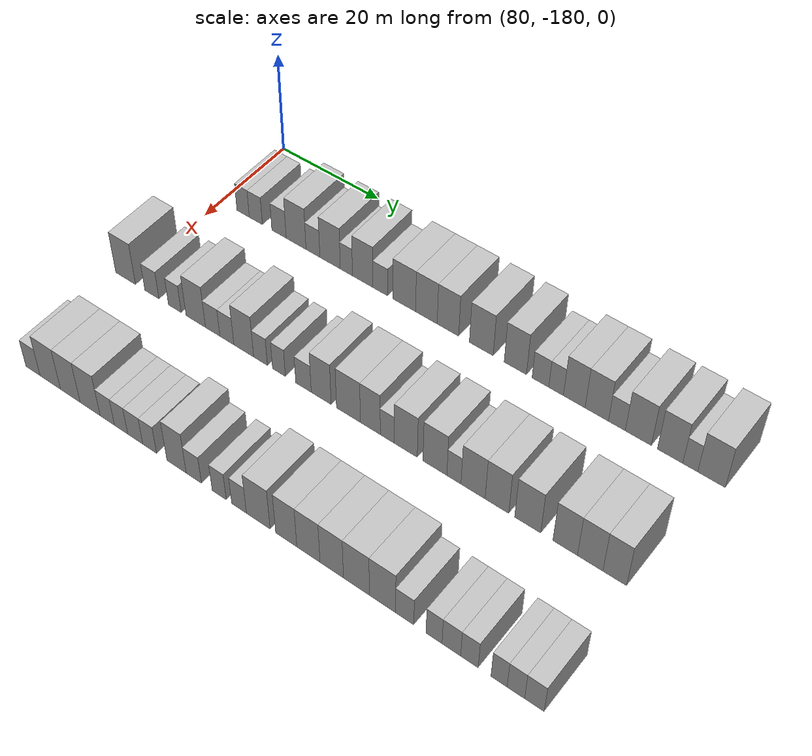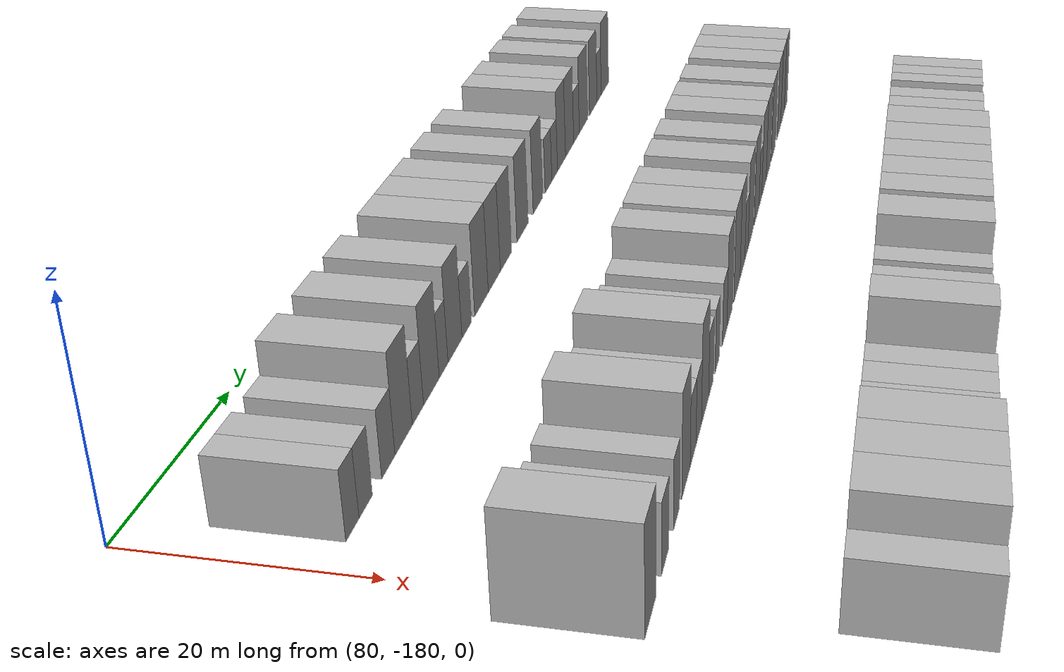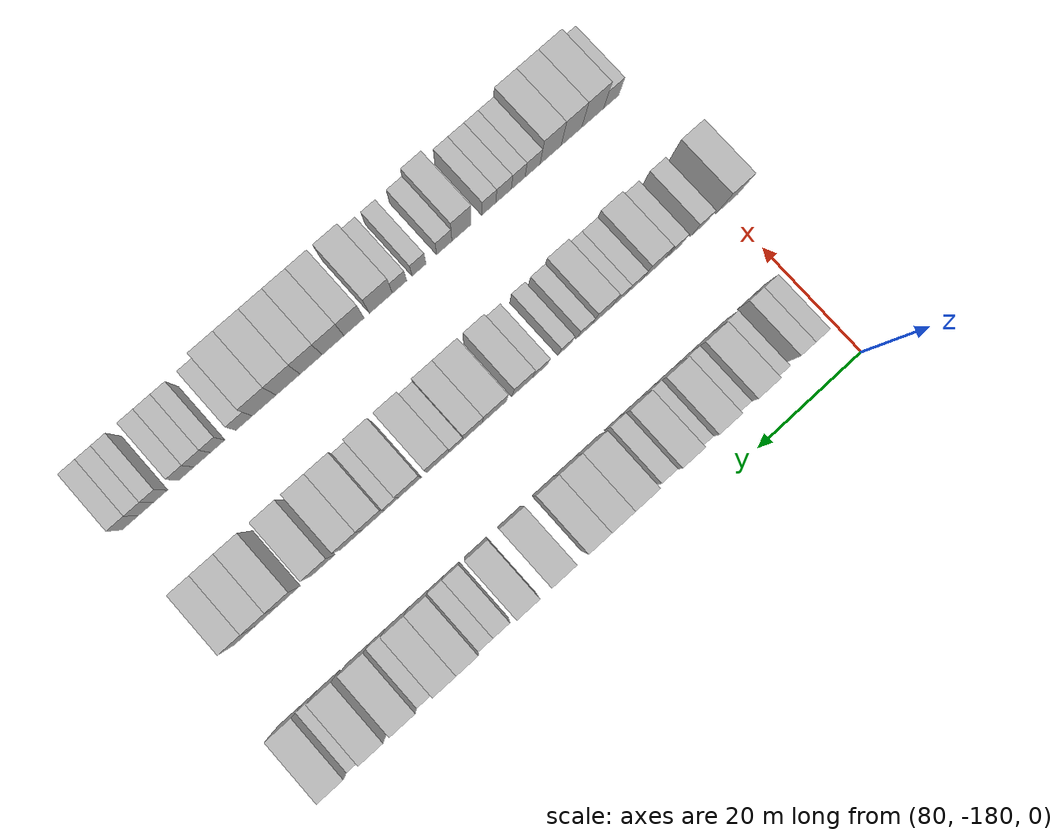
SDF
<sdf version="1.6">
 <world name="default">
  <model name="building_617">
   <static>1</static>
   <pose>91.0000 -175.3412 0 0.000000 0.000000 0.000000</pose>
   <link name="link">
    <pose>0 0 3.00 0 0 0</pose>
    <collision name="collision"><geometry><box><size>10.0000 2.6370 6.0000</size></box></geometry></collision>
    <visual name="visual">
     <cast_shadows>0</cast_shadows>
     <geometry><box><size>10.0000 2.6370 6.0000</size></box></geometry>
     <material>
      <script>
       <uri>model://HANNAS_wall/materials/scripts</uri>
       <uri>model://HANNAS_wall/materials/textures</uri>
       <name>vrc/HANNAS_wall</name>
      </script>
     </material>
    </visual>
   </link>
  </model>
  <model name="building_618">
   <static>1</static>
   <pose>91.0000 -172.6366 0 0.000000 0.000000 0.000000</pose>
   <link name="link">
    <pose>0 0 3.00 0 0 0</pose>
    <collision name="collision"><geometry><box><size>10.0000 2.7722 6.0000</size></box></geometry></collision>
    <visual name="visual">
     <cast_shadows>0</cast_shadows>
     <geometry><box><size>10.0000 2.7722 6.0000</size></box></geometry>
     <material>
      <script>
       <uri>model://HANNAS_wall/materials/scripts</uri>
       <uri>model://HANNAS_wall/materials/textures</uri>
       <name>vrc/HANNAS_wall</name>
      </script>
     </material>
    </visual>
   </link>
  </model>
  <model name="building_619">
   <static>1</static>
   <pose>91.0000 -167.7536 0 0.000000 0.000000 0.000000</pose>
   <link name="link">
    <pose>0 0 3.00 0 0 0</pose>
    <collision name="collision"><geometry><box><size>10.0000 2.9938 6.0000</size></box></geometry></collision>
    <visual name="visual">
     <cast_shadows>0</cast_shadows>
     <geometry><box><size>10.0000 2.9938 6.0000</size></box></geometry>
     <material>
      <script>
       <uri>model://HANNAS_wall/materials/scripts</uri>
       <uri>model://HANNAS_wall/materials/textures</uri>
       <name>vrc/HANNAS_wall</name>
      </script>
     </material>
    </visual>
   </link>
  </model>
  <model name="building_620">
   <static>1</static>
   <pose>91.0000 -164.2091 0 0.000000 0.000000 0.000000</pose>
   <link name="link">
    <pose>0 0 4.50 0 0 0</pose>
    <collision name="collision"><geometry><box><size>10.0000 4.0953 9.0000</size></box></geometry></collision>
    <visual name="visual">
     <cast_shadows>0</cast_shadows>
     <geometry><box><size>10.0000 4.0953 9.0000</size></box></geometry>
     <material>
      <script>
       <uri>model://HANNAS_wall/materials/scripts</uri>
       <uri>model://HANNAS_wall/materials/textures</uri>
       <name>vrc/HANNAS_wall</name>
      </script>
     </material>
    </visual>
   </link>
  </model>
  <model name="building_621">
   <static>1</static>
   <pose>91.0000 -160.7465 0 0.000000 0.000000 0.000000</pose>
   <link name="link">
    <pose>0 0 3.00 0 0 0</pose>
    <collision name="collision"><geometry><box><size>10.0000 2.8298 6.0000</size></box></geometry></collision>
    <visual name="visual">
     <cast_shadows>0</cast_shadows>
     <geometry><box><size>10.0000 2.8298 6.0000</size></box></geometry>
     <material>
      <script>
       <uri>model://HANNAS_wall/materials/scripts</uri>
       <uri>model://HANNAS_wall/materials/textures</uri>
       <name>vrc/HANNAS_wall</name>
      </script>
     </material>
    </visual>
   </link>
  </model>
  <model name="building_622">
   <static>1</static>
   <pose>91.0000 -157.2662 0 0.000000 0.000000 0.000000</pose>
   <link name="link">
    <pose>0 0 4.50 0 0 0</pose>
    <collision name="collision"><geometry><box><size>10.0000 4.1307 9.0000</size></box></geometry></collision>
    <visual name="visual">
     <cast_shadows>0</cast_shadows>
     <geometry><box><size>10.0000 4.1307 9.0000</size></box></geometry>
     <material>
      <script>
       <uri>model://HANNAS_wall/materials/scripts</uri>
       <uri>model://HANNAS_wall/materials/textures</uri>
       <name>vrc/HANNAS_wall</name>
      </script>
     </material>
    </visual>
   </link>
  </model>
  <model name="building_623">
   <static>1</static>
   <pose>91.0000 -153.9831 0 0.000000 0.000000 0.000000</pose>
   <link name="link">
    <pose>0 0 3.00 0 0 0</pose>
    <collision name="collision"><geometry><box><size>10.0000 2.4356 6.0000</size></box></geometry></collision>
    <visual name="visual">
     <cast_shadows>0</cast_shadows>
     <geometry><box><size>10.0000 2.4356 6.0000</size></box></geometry>
     <material>
      <script>
       <uri>model://HANNAS_wall/materials/scripts</uri>
       <uri>model://HANNAS_wall/materials/textures</uri>
       <name>vrc/HANNAS_wall</name>
      </script>
     </material>
    </visual>
   </link>
  </model>
  <model name="building_624">
   <static>1</static>
   <pose>91.0000 -150.7377 0 0.000000 0.000000 0.000000</pose>
   <link name="link">
    <pose>0 0 4.50 0 0 0</pose>
    <collision name="collision"><geometry><box><size>10.0000 4.0552 9.0000</size></box></geometry></collision>
    <visual name="visual">
     <cast_shadows>0</cast_shadows>
     <geometry><box><size>10.0000 4.0552 9.0000</size></box></geometry>
     <material>
      <script>
       <uri>model://HANNAS_wall/materials/scripts</uri>
       <uri>model://HANNAS_wall/materials/textures</uri>
       <name>vrc/HANNAS_wall</name>
      </script>
     </material>
    </visual>
   </link>
  </model>
  <model name="building_625">
   <static>1</static>
   <pose>91.0000 -147.2752 0 0.000000 0.000000 0.000000</pose>
   <link name="link">
    <pose>0 0 3.00 0 0 0</pose>
    <collision name="collision"><geometry><box><size>10.0000 2.8698 6.0000</size></box></geometry></collision>
    <visual name="visual">
     <cast_shadows>0</cast_shadows>
     <geometry><box><size>10.0000 2.8698 6.0000</size></box></geometry>
     <material>
      <script>
       <uri>model://HANNAS_wall/materials/scripts</uri>
       <uri>model://HANNAS_wall/materials/textures</uri>
       <name>vrc/HANNAS_wall</name>
      </script>
     </material>
    </visual>
   </link>
  </model>
  <model name="building_626">
   <static>1</static>
   <pose>91.0000 -142.6439 0 0.000000 0.000000 0.000000</pose>
   <link name="link">
    <pose>0 0 4.50 0 0 0</pose>
    <collision name="collision"><geometry><box><size>10.0000 4.3927 9.0000</size></box></geometry></collision>
    <visual name="visual">
     <cast_shadows>0</cast_shadows>
     <geometry><box><size>10.0000 4.3927 9.0000</size></box></geometry>
     <material>
      <script>
       <uri>model://HANNAS_wall/materials/scripts</uri>
       <uri>model://HANNAS_wall/materials/textures</uri>
       <name>vrc/HANNAS_wall</name>
      </script>
     </material>
    </visual>
   </link>
  </model>
  <model name="building_627">
   <static>1</static>
   <pose>91.0000 -138.3917 0 0.000000 0.000000 0.000000</pose>
   <link name="link">
    <pose>0 0 4.50 0 0 0</pose>
    <collision name="collision"><geometry><box><size>10.0000 4.1118 9.0000</size></box></geometry></collision>
    <visual name="visual">
     <cast_shadows>0</cast_shadows>
     <geometry><box><size>10.0000 4.1118 9.0000</size></box></geometry>
     <material>
      <script>
       <uri>model://HANNAS_wall/materials/scripts</uri>
       <uri>model://HANNAS_wall/materials/textures</uri>
       <name>vrc/HANNAS_wall</name>
      </script>
     </material>
    </visual>
   </link>
  </model>
  <model name="building_628">
   <static>1</static>
   <pose>91.0000 -134.3177 0 0.000000 0.000000 0.000000</pose>
   <link name="link">
    <pose>0 0 4.50 0 0 0</pose>
    <collision name="collision"><geometry><box><size>10.0000 4.0362 9.0000</size></box></geometry></collision>
    <visual name="visual">
     <cast_shadows>0</cast_shadows>
     <geometry><box><size>10.0000 4.0362 9.0000</size></box></geometry>
     <material>
      <script>
       <uri>model://HANNAS_wall/materials/scripts</uri>
       <uri>model://HANNAS_wall/materials/textures</uri>
       <name>vrc/HANNAS_wall</name>
      </script>
     </material>
    </visual>
   </link>
  </model>
  <model name="building_629">
   <static>1</static>
   <pose>91.0000 -128.1129 0 0.000000 0.000000 0.000000</pose>
   <link name="link">
    <pose>0 0 4.50 0 0 0</pose>
    <collision name="collision"><geometry><box><size>10.0000 4.3734 9.0000</size></box></geometry></collision>
    <visual name="visual">
     <cast_shadows>0</cast_shadows>
     <geometry><box><size>10.0000 4.3734 9.0000</size></box></geometry>
     <material>
      <script>
       <uri>model://HANNAS_wall/materials/scripts</uri>
       <uri>model://HANNAS_wall/materials/textures</uri>
       <name>vrc/HANNAS_wall</name>
      </script>
     </material>
    </visual>
   </link>
  </model>
  <model name="building_630">
   <static>1</static>
   <pose>91.0000 -121.9195 0 0.000000 0.000000 0.000000</pose>
   <link name="link">
    <pose>0 0 4.50 0 0 0</pose>
    <collision name="collision"><geometry><box><size>10.0000 4.0134 9.0000</size></box></geometry></collision>
    <visual name="visual">
     <cast_shadows>0</cast_shadows>
     <geometry><box><size>10.0000 4.0134 9.0000</size></box></geometry>
     <material>
      <script>
       <uri>model://HANNAS_wall/materials/scripts</uri>
       <uri>model://HANNAS_wall/materials/textures</uri>
       <name>vrc/HANNAS_wall</name>
      </script>
     </material>
    </visual>
   </link>
  </model>
  <model name="building_631">
   <static>1</static>
   <pose>91.0000 -117.4306 0 0.000000 0.000000 0.000000</pose>
   <link name="link">
    <pose>0 0 3.00 0 0 0</pose>
    <collision name="collision"><geometry><box><size>10.0000 2.9645 6.0000</size></box></geometry></collision>
    <visual name="visual">
     <cast_shadows>0</cast_shadows>
     <geometry><box><size>10.0000 2.9645 6.0000</size></box></geometry>
     <material>
      <script>
       <uri>model://HANNAS_wall/materials/scripts</uri>
       <uri>model://HANNAS_wall/materials/textures</uri>
       <name>vrc/HANNAS_wall</name>
      </script>
     </material>
    </visual>
   </link>
  </model>
  <model name="building_632">
   <static>1</static>
   <pose>91.0000 -114.6640 0 0.000000 0.000000 0.000000</pose>
   <link name="link">
    <pose>0 0 3.00 0 0 0</pose>
    <collision name="collision"><geometry><box><size>10.0000 2.5686 6.0000</size></box></geometry></collision>
    <visual name="visual">
     <cast_shadows>0</cast_shadows>
     <geometry><box><size>10.0000 2.5686 6.0000</size></box></geometry>
     <material>
      <script>
       <uri>model://HANNAS_wall/materials/scripts</uri>
       <uri>model://HANNAS_wall/materials/textures</uri>
       <name>vrc/HANNAS_wall</name>
      </script>
     </material>
    </visual>
   </link>
  </model>
  <model name="building_633">
   <static>1</static>
   <pose>91.0000 -111.4938 0 0.000000 0.000000 0.000000</pose>
   <link name="link">
    <pose>0 0 4.50 0 0 0</pose>
    <collision name="collision"><geometry><box><size>10.0000 3.7718 9.0000</size></box></geometry></collision>
    <visual name="visual">
     <cast_shadows>0</cast_shadows>
     <geometry><box><size>10.0000 3.7718 9.0000</size></box></geometry>
     <material>
      <script>
       <uri>model://HANNAS_wall/materials/scripts</uri>
       <uri>model://HANNAS_wall/materials/textures</uri>
       <name>vrc/HANNAS_wall</name>
      </script>
     </material>
    </visual>
   </link>
  </model>
  <model name="building_634">
   <static>1</static>
   <pose>91.0000 -107.6077 0 0.000000 0.000000 0.000000</pose>
   <link name="link">
    <pose>0 0 4.50 0 0 0</pose>
    <collision name="collision"><geometry><box><size>10.0000 4.0003 9.0000</size></box></geometry></collision>
    <visual name="visual">
     <cast_shadows>0</cast_shadows>
     <geometry><box><size>10.0000 4.0003 9.0000</size></box></geometry>
     <material>
      <script>
       <uri>model://HANNAS_wall/materials/scripts</uri>
       <uri>model://HANNAS_wall/materials/textures</uri>
       <name>vrc/HANNAS_wall</name>
      </script>
     </material>
    </visual>
   </link>
  </model>
  <model name="building_635">
   <static>1</static>
   <pose>91.0000 -104.1824 0 0.000000 0.000000 0.000000</pose>
   <link name="link">
    <pose>0 0 3.00 0 0 0</pose>
    <collision name="collision"><geometry><box><size>10.0000 2.8503 6.0000</size></box></geometry></collision>
    <visual name="visual">
     <cast_shadows>0</cast_shadows>
     <geometry><box><size>10.0000 2.8503 6.0000</size></box></geometry>
     <material>
      <script>
       <uri>model://HANNAS_wall/materials/scripts</uri>
       <uri>model://HANNAS_wall/materials/textures</uri>
       <name>vrc/HANNAS_wall</name>
      </script>
     </material>
    </visual>
   </link>
  </model>
  <model name="building_636">
   <static>1</static>
   <pose>91.0000 -100.5726 0 0.000000 0.000000 0.000000</pose>
   <link name="link">
    <pose>0 0 4.50 0 0 0</pose>
    <collision name="collision"><geometry><box><size>10.0000 4.3694 9.0000</size></box></geometry></collision>
    <visual name="visual">
     <cast_shadows>0</cast_shadows>
     <geometry><box><size>10.0000 4.3694 9.0000</size></box></geometry>
     <material>
      <script>
       <uri>model://HANNAS_wall/materials/scripts</uri>
       <uri>model://HANNAS_wall/materials/textures</uri>
       <name>vrc/HANNAS_wall</name>
      </script>
     </material>
    </visual>
   </link>
  </model>
  <model name="building_637">
   <static>1</static>
   <pose>91.0000 -95.3036 0 0.000000 0.000000 0.000000</pose>
   <link name="link">
    <pose>0 0 4.50 0 0 0</pose>
    <collision name="collision"><geometry><box><size>10.0000 4.1686 9.0000</size></box></geometry></collision>
    <visual name="visual">
     <cast_shadows>0</cast_shadows>
     <geometry><box><size>10.0000 4.1686 9.0000</size></box></geometry>
     <material>
      <script>
       <uri>model://HANNAS_wall/materials/scripts</uri>
       <uri>model://HANNAS_wall/materials/textures</uri>
       <name>vrc/HANNAS_wall</name>
      </script>
     </material>
    </visual>
   </link>
  </model>
  <model name="building_638">
   <static>1</static>
   <pose>91.0000 -92.0115 0 0.000000 0.000000 0.000000</pose>
   <link name="link">
    <pose>0 0 3.00 0 0 0</pose>
    <collision name="collision"><geometry><box><size>10.0000 2.4155 6.0000</size></box></geometry></collision>
    <visual name="visual">
     <cast_shadows>0</cast_shadows>
     <geometry><box><size>10.0000 2.4155 6.0000</size></box></geometry>
     <material>
      <script>
       <uri>model://HANNAS_wall/materials/scripts</uri>
       <uri>model://HANNAS_wall/materials/textures</uri>
       <name>vrc/HANNAS_wall</name>
      </script>
     </material>
    </visual>
   </link>
  </model>
  <model name="building_639">
   <static>1</static>
   <pose>91.0000 -88.5866 0 0.000000 0.000000 0.000000</pose>
   <link name="link">
    <pose>0 0 4.50 0 0 0</pose>
    <collision name="collision"><geometry><box><size>10.0000 4.4344 9.0000</size></box></geometry></collision>
    <visual name="visual">
     <cast_shadows>0</cast_shadows>
     <geometry><box><size>10.0000 4.4344 9.0000</size></box></geometry>
     <material>
      <script>
       <uri>model://HANNAS_wall/materials/scripts</uri>
       <uri>model://HANNAS_wall/materials/textures</uri>
       <name>vrc/HANNAS_wall</name>
      </script>
     </material>
    </visual>
   </link>
  </model>
  <model name="building_801">
   <static>1</static>
   <pose>113.0000 -180.5850 0 0.000000 0.000000 0.000000</pose>
   <link name="link">
    <pose>0 0 4.50 0 0 0</pose>
    <collision name="collision"><geometry><box><size>10.0000 4.2347 9.0000</size></box></geometry></collision>
    <visual name="visual">
     <cast_shadows>0</cast_shadows>
     <geometry><box><size>10.0000 4.2347 9.0000</size></box></geometry>
     <material>
      <script>
       <uri>model://HANNAS_wall/materials/scripts</uri>
       <uri>model://HANNAS_wall/materials/textures</uri>
       <name>vrc/HANNAS_wall</name>
      </script>
     </material>
    </visual>
   </link>
  </model>
  <model name="building_802">
   <static>1</static>
   <pose>113.0000 -174.9912 0 0.000000 0.000000 0.000000</pose>
   <link name="link">
    <pose>0 0 3.00 0 0 0</pose>
    <collision name="collision"><geometry><box><size>10.0000 2.9528 6.0000</size></box></geometry></collision>
    <visual name="visual">
     <cast_shadows>0</cast_shadows>
     <geometry><box><size>10.0000 2.9528 6.0000</size></box></geometry>
     <material>
      <script>
       <uri>model://HANNAS_wall/materials/scripts</uri>
       <uri>model://HANNAS_wall/materials/textures</uri>
       <name>vrc/HANNAS_wall</name>
      </script>
     </material>
    </visual>
   </link>
  </model>
  <model name="building_803">
   <static>1</static>
   <pose>113.0000 -170.1939 0 0.000000 0.000000 0.000000</pose>
   <link name="link">
    <pose>0 0 3.00 0 0 0</pose>
    <collision name="collision"><geometry><box><size>10.0000 2.6418 6.0000</size></box></geometry></collision>
    <visual name="visual">
     <cast_shadows>0</cast_shadows>
     <geometry><box><size>10.0000 2.6418 6.0000</size></box></geometry>
     <material>
      <script>
       <uri>model://HANNAS_wall/materials/scripts</uri>
       <uri>model://HANNAS_wall/materials/textures</uri>
       <name>vrc/HANNAS_wall</name>
      </script>
     </material>
    </visual>
   </link>
  </model>
  <model name="building_804">
   <static>1</static>
   <pose>113.0000 -165.8913 0 0.000000 0.000000 0.000000</pose>
   <link name="link">
    <pose>0 0 4.50 0 0 0</pose>
    <collision name="collision"><geometry><box><size>10.0000 3.9634 9.0000</size></box></geometry></collision>
    <visual name="visual">
     <cast_shadows>0</cast_shadows>
     <geometry><box><size>10.0000 3.9634 9.0000</size></box></geometry>
     <material>
      <script>
       <uri>model://HANNAS_wall/materials/scripts</uri>
       <uri>model://HANNAS_wall/materials/textures</uri>
       <name>vrc/HANNAS_wall</name>
      </script>
     </material>
    </visual>
   </link>
  </model>
  <model name="building_805">
   <static>1</static>
   <pose>113.0000 -162.4553 0 0.000000 0.000000 0.000000</pose>
   <link name="link">
    <pose>0 0 3.00 0 0 0</pose>
    <collision name="collision"><geometry><box><size>10.0000 2.9087 6.0000</size></box></geometry></collision>
    <visual name="visual">
     <cast_shadows>0</cast_shadows>
     <geometry><box><size>10.0000 2.9087 6.0000</size></box></geometry>
     <material>
      <script>
       <uri>model://HANNAS_wall/materials/scripts</uri>
       <uri>model://HANNAS_wall/materials/textures</uri>
       <name>vrc/HANNAS_wall</name>
      </script>
     </material>
    </visual>
   </link>
  </model>
  <model name="building_806">
   <static>1</static>
   <pose>113.0000 -159.5972 0 0.000000 0.000000 0.000000</pose>
   <link name="link">
    <pose>0 0 3.00 0 0 0</pose>
    <collision name="collision"><geometry><box><size>10.0000 2.8075 6.0000</size></box></geometry></collision>
    <visual name="visual">
     <cast_shadows>0</cast_shadows>
     <geometry><box><size>10.0000 2.8075 6.0000</size></box></geometry>
     <material>
      <script>
       <uri>model://HANNAS_wall/materials/scripts</uri>
       <uri>model://HANNAS_wall/materials/textures</uri>
       <name>vrc/HANNAS_wall</name>
      </script>
     </material>
    </visual>
   </link>
  </model>
  <model name="building_807">
   <static>1</static>
   <pose>113.0000 -156.2351 0 0.000000 0.000000 0.000000</pose>
   <link name="link">
    <pose>0 0 4.50 0 0 0</pose>
    <collision name="collision"><geometry><box><size>10.0000 3.9168 9.0000</size></box></geometry></collision>
    <visual name="visual">
     <cast_shadows>0</cast_shadows>
     <geometry><box><size>10.0000 3.9168 9.0000</size></box></geometry>
     <material>
      <script>
       <uri>model://HANNAS_wall/materials/scripts</uri>
       <uri>model://HANNAS_wall/materials/textures</uri>
       <name>vrc/HANNAS_wall</name>
      </script>
     </material>
    </visual>
   </link>
  </model>
  <model name="building_808">
   <static>1</static>
   <pose>113.0000 -152.9269 0 0.000000 0.000000 0.000000</pose>
   <link name="link">
    <pose>0 0 3.00 0 0 0</pose>
    <collision name="collision"><geometry><box><size>10.0000 2.6995 6.0000</size></box></geometry></collision>
    <visual name="visual">
     <cast_shadows>0</cast_shadows>
     <geometry><box><size>10.0000 2.6995 6.0000</size></box></geometry>
     <material>
      <script>
       <uri>model://HANNAS_wall/materials/scripts</uri>
       <uri>model://HANNAS_wall/materials/textures</uri>
       <name>vrc/HANNAS_wall</name>
      </script>
     </material>
    </visual>
   </link>
  </model>
  <model name="building_809">
   <static>1</static>
   <pose>113.0000 -149.3389 0 0.000000 0.000000 0.000000</pose>
   <link name="link">
    <pose>0 0 3.00 0 0 0</pose>
    <collision name="collision"><geometry><box><size>10.0000 2.4766 6.0000</size></box></geometry></collision>
    <visual name="visual">
     <cast_shadows>0</cast_shadows>
     <geometry><box><size>10.0000 2.4766 6.0000</size></box></geometry>
     <material>
      <script>
       <uri>model://HANNAS_wall/materials/scripts</uri>
       <uri>model://HANNAS_wall/materials/textures</uri>
       <name>vrc/HANNAS_wall</name>
      </script>
     </material>
    </visual>
   </link>
  </model>
  <model name="building_810">
   <static>1</static>
   <pose>113.0000 -144.6303 0 0.000000 0.000000 0.000000</pose>
   <link name="link">
    <pose>0 0 3.00 0 0 0</pose>
    <collision name="collision"><geometry><box><size>10.0000 2.9406 6.0000</size></box></geometry></collision>
    <visual name="visual">
     <cast_shadows>0</cast_shadows>
     <geometry><box><size>10.0000 2.9406 6.0000</size></box></geometry>
     <material>
      <script>
       <uri>model://HANNAS_wall/materials/scripts</uri>
       <uri>model://HANNAS_wall/materials/textures</uri>
       <name>vrc/HANNAS_wall</name>
      </script>
     </material>
    </visual>
   </link>
  </model>
  <model name="building_811">
   <static>1</static>
   <pose>113.0000 -141.2838 0 0.000000 0.000000 0.000000</pose>
   <link name="link">
    <pose>0 0 4.50 0 0 0</pose>
    <collision name="collision"><geometry><box><size>10.0000 3.7525 9.0000</size></box></geometry></collision>
    <visual name="visual">
     <cast_shadows>0</cast_shadows>
     <geometry><box><size>10.0000 3.7525 9.0000</size></box></geometry>
     <material>
      <script>
       <uri>model://HANNAS_wall/materials/scripts</uri>
       <uri>model://HANNAS_wall/materials/textures</uri>
       <name>vrc/HANNAS_wall</name>
      </script>
     </material>
    </visual>
   </link>
  </model>
  <model name="building_812">
   <static>1</static>
   <pose>113.0000 -136.1999 0 0.000000 0.000000 0.000000</pose>
   <link name="link">
    <pose>0 0 4.50 0 0 0</pose>
    <collision name="collision"><geometry><box><size>10.0000 4.4151 9.0000</size></box></geometry></collision>
    <visual name="visual">
     <cast_shadows>0</cast_shadows>
     <geometry><box><size>10.0000 4.4151 9.0000</size></box></geometry>
     <material>
      <script>
       <uri>model://HANNAS_wall/materials/scripts</uri>
       <uri>model://HANNAS_wall/materials/textures</uri>
       <name>vrc/HANNAS_wall</name>
      </script>
     </material>
    </visual>
   </link>
  </model>
  <model name="building_813">
   <static>1</static>
   <pose>113.0000 -132.1816 0 0.000000 0.000000 0.000000</pose>
   <link name="link">
    <pose>0 0 4.50 0 0 0</pose>
    <collision name="collision"><geometry><box><size>10.0000 3.6217 9.0000</size></box></geometry></collision>
    <visual name="visual">
     <cast_shadows>0</cast_shadows>
     <geometry><box><size>10.0000 3.6217 9.0000</size></box></geometry>
     <material>
      <script>
       <uri>model://HANNAS_wall/materials/scripts</uri>
       <uri>model://HANNAS_wall/materials/textures</uri>
       <name>vrc/HANNAS_wall</name>
      </script>
     </material>
    </visual>
   </link>
  </model>
  <model name="building_814">
   <static>1</static>
   <pose>113.0000 -129.1202 0 0.000000 0.000000 0.000000</pose>
   <link name="link">
    <pose>0 0 3.00 0 0 0</pose>
    <collision name="collision"><geometry><box><size>10.0000 2.5010 6.0000</size></box></geometry></collision>
    <visual name="visual">
     <cast_shadows>0</cast_shadows>
     <geometry><box><size>10.0000 2.5010 6.0000</size></box></geometry>
     <material>
      <script>
       <uri>model://HANNAS_wall/materials/scripts</uri>
       <uri>model://HANNAS_wall/materials/textures</uri>
       <name>vrc/HANNAS_wall</name>
      </script>
     </material>
    </visual>
   </link>
  </model>
  <model name="building_815">
   <static>1</static>
   <pose>113.0000 -125.8037 0 0.000000 0.000000 0.000000</pose>
   <link name="link">
    <pose>0 0 4.50 0 0 0</pose>
    <collision name="collision"><geometry><box><size>10.0000 4.1321 9.0000</size></box></geometry></collision>
    <visual name="visual">
     <cast_shadows>0</cast_shadows>
     <geometry><box><size>10.0000 4.1321 9.0000</size></box></geometry>
     <material>
      <script>
       <uri>model://HANNAS_wall/materials/scripts</uri>
       <uri>model://HANNAS_wall/materials/textures</uri>
       <name>vrc/HANNAS_wall</name>
      </script>
     </material>
    </visual>
   </link>
  </model>
  <model name="building_816">
   <static>1</static>
   <pose>113.0000 -120.6433 0 0.000000 0.000000 0.000000</pose>
   <link name="link">
    <pose>0 0 4.50 0 0 0</pose>
    <collision name="collision"><geometry><box><size>10.0000 4.1886 9.0000</size></box></geometry></collision>
    <visual name="visual">
     <cast_shadows>0</cast_shadows>
     <geometry><box><size>10.0000 4.1886 9.0000</size></box></geometry>
     <material>
      <script>
       <uri>model://HANNAS_wall/materials/scripts</uri>
       <uri>model://HANNAS_wall/materials/textures</uri>
       <name>vrc/HANNAS_wall</name>
      </script>
     </material>
    </visual>
   </link>
  </model>
  <model name="building_817">
   <static>1</static>
   <pose>113.0000 -117.3248 0 0.000000 0.000000 0.000000</pose>
   <link name="link">
    <pose>0 0 3.00 0 0 0</pose>
    <collision name="collision"><geometry><box><size>10.0000 2.4485 6.0000</size></box></geometry></collision>
    <visual name="visual">
     <cast_shadows>0</cast_shadows>
     <geometry><box><size>10.0000 2.4485 6.0000</size></box></geometry>
     <material>
      <script>
       <uri>model://HANNAS_wall/materials/scripts</uri>
       <uri>model://HANNAS_wall/materials/textures</uri>
       <name>vrc/HANNAS_wall</name>
      </script>
     </material>
    </visual>
   </link>
  </model>
  <model name="building_818">
   <static>1</static>
   <pose>113.0000 -114.0329 0 0.000000 0.000000 0.000000</pose>
   <link name="link">
    <pose>0 0 4.50 0 0 0</pose>
    <collision name="collision"><geometry><box><size>10.0000 4.1353 9.0000</size></box></geometry></collision>
    <visual name="visual">
     <cast_shadows>0</cast_shadows>
     <geometry><box><size>10.0000 4.1353 9.0000</size></box></geometry>
     <material>
      <script>
       <uri>model://HANNAS_wall/materials/scripts</uri>
       <uri>model://HANNAS_wall/materials/textures</uri>
       <name>vrc/HANNAS_wall</name>
      </script>
     </material>
    </visual>
   </link>
  </model>
  <model name="building_819">
   <static>1</static>
   <pose>113.0000 -109.9729 0 0.000000 0.000000 0.000000</pose>
   <link name="link">
    <pose>0 0 4.50 0 0 0</pose>
    <collision name="collision"><geometry><box><size>10.0000 3.9845 9.0000</size></box></geometry></collision>
    <visual name="visual">
     <cast_shadows>0</cast_shadows>
     <geometry><box><size>10.0000 3.9845 9.0000</size></box></geometry>
     <material>
      <script>
       <uri>model://HANNAS_wall/materials/scripts</uri>
       <uri>model://HANNAS_wall/materials/textures</uri>
       <name>vrc/HANNAS_wall</name>
      </script>
     </material>
    </visual>
   </link>
  </model>
  <model name="building_820">
   <static>1</static>
   <pose>113.0000 -104.8271 0 0.000000 0.000000 0.000000</pose>
   <link name="link">
    <pose>0 0 4.50 0 0 0</pose>
    <collision name="collision"><geometry><box><size>10.0000 4.3071 9.0000</size></box></geometry></collision>
    <visual name="visual">
     <cast_shadows>0</cast_shadows>
     <geometry><box><size>10.0000 4.3071 9.0000</size></box></geometry>
     <material>
      <script>
       <uri>model://HANNAS_wall/materials/scripts</uri>
       <uri>model://HANNAS_wall/materials/textures</uri>
       <name>vrc/HANNAS_wall</name>
      </script>
     </material>
    </visual>
   </link>
  </model>
  <model name="building_821">
   <static>1</static>
   <pose>113.0000 -98.6891 0 0.000000 0.000000 0.000000</pose>
   <link name="link">
    <pose>0 0 4.50 0 0 0</pose>
    <collision name="collision"><geometry><box><size>10.0000 3.9690 9.0000</size></box></geometry></collision>
    <visual name="visual">
     <cast_shadows>0</cast_shadows>
     <geometry><box><size>10.0000 3.9690 9.0000</size></box></geometry>
     <material>
      <script>
       <uri>model://HANNAS_wall/materials/scripts</uri>
       <uri>model://HANNAS_wall/materials/textures</uri>
       <name>vrc/HANNAS_wall</name>
      </script>
     </material>
    </visual>
   </link>
  </model>
  <model name="building_822">
   <static>1</static>
   <pose>113.0000 -94.6824 0 0.000000 0.000000 0.000000</pose>
   <link name="link">
    <pose>0 0 4.50 0 0 0</pose>
    <collision name="collision"><geometry><box><size>10.0000 4.0445 9.0000</size></box></geometry></collision>
    <visual name="visual">
     <cast_shadows>0</cast_shadows>
     <geometry><box><size>10.0000 4.0445 9.0000</size></box></geometry>
     <material>
      <script>
       <uri>model://HANNAS_wall/materials/scripts</uri>
       <uri>model://HANNAS_wall/materials/textures</uri>
       <name>vrc/HANNAS_wall</name>
      </script>
     </material>
    </visual>
   </link>
  </model>
  <model name="building_823">
   <static>1</static>
   <pose>113.0000 -90.7920 0 0.000000 0.000000 0.000000</pose>
   <link name="link">
    <pose>0 0 4.50 0 0 0</pose>
    <collision name="collision"><geometry><box><size>10.0000 3.7363 9.0000</size></box></geometry></collision>
    <visual name="visual">
     <cast_shadows>0</cast_shadows>
     <geometry><box><size>10.0000 3.7363 9.0000</size></box></geometry>
     <material>
      <script>
       <uri>model://HANNAS_wall/materials/scripts</uri>
       <uri>model://HANNAS_wall/materials/textures</uri>
       <name>vrc/HANNAS_wall</name>
      </script>
     </material>
    </visual>
   </link>
  </model>
  <model name="building_995">
   <static>1</static>
   <pose>135.0000 -178.5442 0 0.000000 0.000000 0.000000</pose>
   <link name="link">
    <pose>0 0 3.00 0 0 0</pose>
    <collision name="collision"><geometry><box><size>10.0000 2.9605 6.0000</size></box></geometry></collision>
    <visual name="visual">
     <cast_shadows>0</cast_shadows>
     <geometry><box><size>10.0000 2.9605 6.0000</size></box></geometry>
     <material>
      <script>
       <uri>model://HANNAS_wall/materials/scripts</uri>
       <uri>model://HANNAS_wall/materials/textures</uri>
       <name>vrc/HANNAS_wall</name>
      </script>
     </material>
    </visual>
   </link>
  </model>
  <model name="building_996">
   <static>1</static>
   <pose>135.0000 -174.9272 0 0.000000 0.000000 0.000000</pose>
   <link name="link">
    <pose>0 0 4.50 0 0 0</pose>
    <collision name="collision"><geometry><box><size>10.0000 4.2733 9.0000</size></box></geometry></collision>
    <visual name="visual">
     <cast_shadows>0</cast_shadows>
     <geometry><box><size>10.0000 4.2733 9.0000</size></box></geometry>
     <material>
      <script>
       <uri>model://HANNAS_wall/materials/scripts</uri>
       <uri>model://HANNAS_wall/materials/textures</uri>
       <name>vrc/HANNAS_wall</name>
      </script>
     </material>
    </visual>
   </link>
  </model>
  <model name="building_997">
   <static>1</static>
   <pose>135.0000 -170.7838 0 0.000000 0.000000 0.000000</pose>
   <link name="link">
    <pose>0 0 4.50 0 0 0</pose>
    <collision name="collision"><geometry><box><size>10.0000 4.0135 9.0000</size></box></geometry></collision>
    <visual name="visual">
     <cast_shadows>0</cast_shadows>
     <geometry><box><size>10.0000 4.0135 9.0000</size></box></geometry>
     <material>
      <script>
       <uri>model://HANNAS_wall/materials/scripts</uri>
       <uri>model://HANNAS_wall/materials/textures</uri>
       <name>vrc/HANNAS_wall</name>
      </script>
     </material>
    </visual>
   </link>
  </model>
  <model name="building_998">
   <static>1</static>
   <pose>135.0000 -166.7561 0 0.000000 0.000000 0.000000</pose>
   <link name="link">
    <pose>0 0 4.50 0 0 0</pose>
    <collision name="collision"><geometry><box><size>10.0000 4.0419 9.0000</size></box></geometry></collision>
    <visual name="visual">
     <cast_shadows>0</cast_shadows>
     <geometry><box><size>10.0000 4.0419 9.0000</size></box></geometry>
     <material>
      <script>
       <uri>model://HANNAS_wall/materials/scripts</uri>
       <uri>model://HANNAS_wall/materials/textures</uri>
       <name>vrc/HANNAS_wall</name>
      </script>
     </material>
    </visual>
   </link>
  </model>
  <model name="building_999">
   <static>1</static>
   <pose>135.0000 -163.2992 0 0.000000 0.000000 0.000000</pose>
   <link name="link">
    <pose>0 0 3.00 0 0 0</pose>
    <collision name="collision"><geometry><box><size>10.0000 2.8718 6.0000</size></box></geometry></collision>
    <visual name="visual">
     <cast_shadows>0</cast_shadows>
     <geometry><box><size>10.0000 2.8718 6.0000</size></box></geometry>
     <material>
      <script>
       <uri>model://HANNAS_wall/materials/scripts</uri>
       <uri>model://HANNAS_wall/materials/textures</uri>
       <name>vrc/HANNAS_wall</name>
      </script>
     </material>
    </visual>
   </link>
  </model>
  <model name="building_1000">
   <static>1</static>
   <pose>135.0000 -160.5485 0 0.000000 0.000000 0.000000</pose>
   <link name="link">
    <pose>0 0 3.00 0 0 0</pose>
    <collision name="collision"><geometry><box><size>10.0000 2.6296 6.0000</size></box></geometry></collision>
    <visual name="visual">
     <cast_shadows>0</cast_shadows>
     <geometry><box><size>10.0000 2.6296 6.0000</size></box></geometry>
     <material>
      <script>
       <uri>model://HANNAS_wall/materials/scripts</uri>
       <uri>model://HANNAS_wall/materials/textures</uri>
       <name>vrc/HANNAS_wall</name>
      </script>
     </material>
    </visual>
   </link>
  </model>
  <model name="building_1001">
   <static>1</static>
   <pose>135.0000 -157.7571 0 0.000000 0.000000 0.000000</pose>
   <link name="link">
    <pose>0 0 3.00 0 0 0</pose>
    <collision name="collision"><geometry><box><size>10.0000 2.9533 6.0000</size></box></geometry></collision>
    <visual name="visual">
     <cast_shadows>0</cast_shadows>
     <geometry><box><size>10.0000 2.9533 6.0000</size></box></geometry>
     <material>
      <script>
       <uri>model://HANNAS_wall/materials/scripts</uri>
       <uri>model://HANNAS_wall/materials/textures</uri>
       <name>vrc/HANNAS_wall</name>
      </script>
     </material>
    </visual>
   </link>
  </model>
  <model name="building_1002">
   <static>1</static>
   <pose>135.0000 -154.9464 0 0.000000 0.000000 0.000000</pose>
   <link name="link">
    <pose>0 0 3.00 0 0 0</pose>
    <collision name="collision"><geometry><box><size>10.0000 2.6680 6.0000</size></box></geometry></collision>
    <visual name="visual">
     <cast_shadows>0</cast_shadows>
     <geometry><box><size>10.0000 2.6680 6.0000</size></box></geometry>
     <material>
      <script>
       <uri>model://HANNAS_wall/materials/scripts</uri>
       <uri>model://HANNAS_wall/materials/textures</uri>
       <name>vrc/HANNAS_wall</name>
      </script>
     </material>
    </visual>
   </link>
  </model>
  <model name="building_1003">
   <static>1</static>
   <pose>135.0000 -149.7729 0 0.000000 0.000000 0.000000</pose>
   <link name="link">
    <pose>0 0 4.50 0 0 0</pose>
    <collision name="collision"><geometry><box><size>10.0000 3.6791 9.0000</size></box></geometry></collision>
    <visual name="visual">
     <cast_shadows>0</cast_shadows>
     <geometry><box><size>10.0000 3.6791 9.0000</size></box></geometry>
     <material>
      <script>
       <uri>model://HANNAS_wall/materials/scripts</uri>
       <uri>model://HANNAS_wall/materials/textures</uri>
       <name>vrc/HANNAS_wall</name>
      </script>
     </material>
    </visual>
   </link>
  </model>
  <model name="building_1004">
   <static>1</static>
   <pose>135.0000 -146.4983 0 0.000000 0.000000 0.000000</pose>
   <link name="link">
    <pose>0 0 3.00 0 0 0</pose>
    <collision name="collision"><geometry><box><size>10.0000 2.8700 6.0000</size></box></geometry></collision>
    <visual name="visual">
     <cast_shadows>0</cast_shadows>
     <geometry><box><size>10.0000 2.8700 6.0000</size></box></geometry>
     <material>
      <script>
       <uri>model://HANNAS_wall/materials/scripts</uri>
       <uri>model://HANNAS_wall/materials/textures</uri>
       <name>vrc/HANNAS_wall</name>
      </script>
     </material>
    </visual>
   </link>
  </model>
  <model name="building_1005">
   <static>1</static>
   <pose>135.0000 -141.7580 0 0.000000 0.000000 0.000000</pose>
   <link name="link">
    <pose>0 0 3.00 0 0 0</pose>
    <collision name="collision"><geometry><box><size>10.0000 2.6106 6.0000</size></box></geometry></collision>
    <visual name="visual">
     <cast_shadows>0</cast_shadows>
     <geometry><box><size>10.0000 2.6106 6.0000</size></box></geometry>
     <material>
      <script>
       <uri>model://HANNAS_wall/materials/scripts</uri>
       <uri>model://HANNAS_wall/materials/textures</uri>
       <name>vrc/HANNAS_wall</name>
      </script>
     </material>
    </visual>
   </link>
  </model>
  <model name="building_1006">
   <static>1</static>
   <pose>135.0000 -138.1095 0 0.000000 0.000000 0.000000</pose>
   <link name="link">
    <pose>0 0 3.00 0 0 0</pose>
    <collision name="collision"><geometry><box><size>10.0000 2.6863 6.0000</size></box></geometry></collision>
    <visual name="visual">
     <cast_shadows>0</cast_shadows>
     <geometry><box><size>10.0000 2.6863 6.0000</size></box></geometry>
     <material>
      <script>
       <uri>model://HANNAS_wall/materials/scripts</uri>
       <uri>model://HANNAS_wall/materials/textures</uri>
       <name>vrc/HANNAS_wall</name>
      </script>
     </material>
    </visual>
   </link>
  </model>
  <model name="building_1007">
   <static>1</static>
   <pose>135.0000 -134.6251 0 0.000000 0.000000 0.000000</pose>
   <link name="link">
    <pose>0 0 4.50 0 0 0</pose>
    <collision name="collision"><geometry><box><size>10.0000 4.2826 9.0000</size></box></geometry></collision>
    <visual name="visual">
     <cast_shadows>0</cast_shadows>
     <geometry><box><size>10.0000 4.2826 9.0000</size></box></geometry>
     <material>
      <script>
       <uri>model://HANNAS_wall/materials/scripts</uri>
       <uri>model://HANNAS_wall/materials/textures</uri>
       <name>vrc/HANNAS_wall</name>
      </script>
     </material>
    </visual>
   </link>
  </model>
  <model name="building_1008">
   <static>1</static>
   <pose>135.0000 -129.6129 0 0.000000 0.000000 0.000000</pose>
   <link name="link">
    <pose>0 0 4.50 0 0 0</pose>
    <collision name="collision"><geometry><box><size>10.0000 3.7417 9.0000</size></box></geometry></collision>
    <visual name="visual">
     <cast_shadows>0</cast_shadows>
     <geometry><box><size>10.0000 3.7417 9.0000</size></box></geometry>
     <material>
      <script>
       <uri>model://HANNAS_wall/materials/scripts</uri>
       <uri>model://HANNAS_wall/materials/textures</uri>
       <name>vrc/HANNAS_wall</name>
      </script>
     </material>
    </visual>
   </link>
  </model>
  <model name="building_1009">
   <static>1</static>
   <pose>135.0000 -125.7219 0 0.000000 0.000000 0.000000</pose>
   <link name="link">
    <pose>0 0 4.50 0 0 0</pose>
    <collision name="collision"><geometry><box><size>10.0000 4.0403 9.0000</size></box></geometry></collision>
    <visual name="visual">
     <cast_shadows>0</cast_shadows>
     <geometry><box><size>10.0000 4.0403 9.0000</size></box></geometry>
     <material>
      <script>
       <uri>model://HANNAS_wall/materials/scripts</uri>
       <uri>model://HANNAS_wall/materials/textures</uri>
       <name>vrc/HANNAS_wall</name>
      </script>
     </material>
    </visual>
   </link>
  </model>
  <model name="building_1010">
   <static>1</static>
   <pose>135.0000 -121.6845 0 0.000000 0.000000 0.000000</pose>
   <link name="link">
    <pose>0 0 4.50 0 0 0</pose>
    <collision name="collision"><geometry><box><size>10.0000 4.0346 9.0000</size></box></geometry></collision>
    <visual name="visual">
     <cast_shadows>0</cast_shadows>
     <geometry><box><size>10.0000 4.0346 9.0000</size></box></geometry>
     <material>
      <script>
       <uri>model://HANNAS_wall/materials/scripts</uri>
       <uri>model://HANNAS_wall/materials/textures</uri>
       <name>vrc/HANNAS_wall</name>
      </script>
     </material>
    </visual>
   </link>
  </model>
  <model name="building_1011">
   <static>1</static>
   <pose>135.0000 -117.4677 0 0.000000 0.000000 0.000000</pose>
   <link name="link">
    <pose>0 0 4.50 0 0 0</pose>
    <collision name="collision"><geometry><box><size>10.0000 4.3990 9.0000</size></box></geometry></collision>
    <visual name="visual">
     <cast_shadows>0</cast_shadows>
     <geometry><box><size>10.0000 4.3990 9.0000</size></box></geometry>
     <material>
      <script>
       <uri>model://HANNAS_wall/materials/scripts</uri>
       <uri>model://HANNAS_wall/materials/textures</uri>
       <name>vrc/HANNAS_wall</name>
      </script>
     </material>
    </visual>
   </link>
  </model>
  <model name="building_1012">
   <static>1</static>
   <pose>135.0000 -113.0890 0 0.000000 0.000000 0.000000</pose>
   <link name="link">
    <pose>0 0 4.50 0 0 0</pose>
    <collision name="collision"><geometry><box><size>10.0000 4.3584 9.0000</size></box></geometry></collision>
    <visual name="visual">
     <cast_shadows>0</cast_shadows>
     <geometry><box><size>10.0000 4.3584 9.0000</size></box></geometry>
     <material>
      <script>
       <uri>model://HANNAS_wall/materials/scripts</uri>
       <uri>model://HANNAS_wall/materials/textures</uri>
       <name>vrc/HANNAS_wall</name>
      </script>
     </material>
    </visual>
   </link>
  </model>
  <model name="building_1013">
   <static>1</static>
   <pose>135.0000 -109.4146 0 0.000000 0.000000 0.000000</pose>
   <link name="link">
    <pose>0 0 3.00 0 0 0</pose>
    <collision name="collision"><geometry><box><size>10.0000 2.9905 6.0000</size></box></geometry></collision>
    <visual name="visual">
     <cast_shadows>0</cast_shadows>
     <geometry><box><size>10.0000 2.9905 6.0000</size></box></geometry>
     <material>
      <script>
       <uri>model://HANNAS_wall/materials/scripts</uri>
       <uri>model://HANNAS_wall/materials/textures</uri>
       <name>vrc/HANNAS_wall</name>
      </script>
     </material>
    </visual>
   </link>
  </model>
  <model name="building_1014">
   <static>1</static>
   <pose>135.0000 -104.6310 0 0.000000 0.000000 0.000000</pose>
   <link name="link">
    <pose>0 0 3.00 0 0 0</pose>
    <collision name="collision"><geometry><box><size>10.0000 2.5767 6.0000</size></box></geometry></collision>
    <visual name="visual">
     <cast_shadows>0</cast_shadows>
     <geometry><box><size>10.0000 2.5767 6.0000</size></box></geometry>
     <material>
      <script>
       <uri>model://HANNAS_wall/materials/scripts</uri>
       <uri>model://HANNAS_wall/materials/textures</uri>
       <name>vrc/HANNAS_wall</name>
      </script>
     </material>
    </visual>
   </link>
  </model>
  <model name="building_1015">
   <static>1</static>
   <pose>135.0000 -101.8542 0 0.000000 0.000000 0.000000</pose>
   <link name="link">
    <pose>0 0 3.00 0 0 0</pose>
    <collision name="collision"><geometry><box><size>10.0000 2.9769 6.0000</size></box></geometry></collision>
    <visual name="visual">
     <cast_shadows>0</cast_shadows>
     <geometry><box><size>10.0000 2.9769 6.0000</size></box></geometry>
     <material>
      <script>
       <uri>model://HANNAS_wall/materials/scripts</uri>
       <uri>model://HANNAS_wall/materials/textures</uri>
       <name>vrc/HANNAS_wall</name>
      </script>
     </material>
    </visual>
   </link>
  </model>
  <model name="building_1016">
   <static>1</static>
   <pose>135.0000 -98.9818 0 0.000000 0.000000 0.000000</pose>
   <link name="link">
    <pose>0 0 3.00 0 0 0</pose>
    <collision name="collision"><geometry><box><size>10.0000 2.7679 6.0000</size></box></geometry></collision>
    <visual name="visual">
     <cast_shadows>0</cast_shadows>
     <geometry><box><size>10.0000 2.7679 6.0000</size></box></geometry>
     <material>
      <script>
       <uri>model://HANNAS_wall/materials/scripts</uri>
       <uri>model://HANNAS_wall/materials/textures</uri>
       <name>vrc/HANNAS_wall</name>
      </script>
     </material>
    </visual>
   </link>
  </model>
  <model name="building_1017">
   <static>1</static>
   <pose>135.0000 -94.3513 0 0.000000 0.000000 0.000000</pose>
   <link name="link">
    <pose>0 0 3.00 0 0 0</pose>
    <collision name="collision"><geometry><box><size>10.0000 2.4931 6.0000</size></box></geometry></collision>
    <visual name="visual">
     <cast_shadows>0</cast_shadows>
     <geometry><box><size>10.0000 2.4931 6.0000</size></box></geometry>
     <material>
      <script>
       <uri>model://HANNAS_wall/materials/scripts</uri>
       <uri>model://HANNAS_wall/materials/textures</uri>
       <name>vrc/HANNAS_wall</name>
      </script>
     </material>
    </visual>
   </link>
  </model>
  <model name="building_1018">
   <static>1</static>
   <pose>135.0000 -91.7596 0 0.000000 0.000000 0.000000</pose>
   <link name="link">
    <pose>0 0 3.00 0 0 0</pose>
    <collision name="collision"><geometry><box><size>10.0000 2.6904 6.0000</size></box></geometry></collision>
    <visual name="visual">
     <cast_shadows>0</cast_shadows>
     <geometry><box><size>10.0000 2.6904 6.0000</size></box></geometry>
     <material>
      <script>
       <uri>model://HANNAS_wall/materials/scripts</uri>
       <uri>model://HANNAS_wall/materials/textures</uri>
       <name>vrc/HANNAS_wall</name>
      </script>
     </material>
    </visual>
   </link>
  </model>
  <model name="building_1019">
   <static>1</static>
   <pose>135.0000 -88.9376 0 0.000000 0.000000 0.000000</pose>
   <link name="link">
    <pose>0 0 3.00 0 0 0</pose>
    <collision name="collision"><geometry><box><size>10.0000 2.9535 6.0000</size></box></geometry></collision>
    <visual name="visual">
     <cast_shadows>0</cast_shadows>
     <geometry><box><size>10.0000 2.9535 6.0000</size></box></geometry>
     <material>
      <script>
       <uri>model://HANNAS_wall/materials/scripts</uri>
       <uri>model://HANNAS_wall/materials/textures</uri>
       <name>vrc/HANNAS_wall</name>
      </script>
     </material>
    </visual>
   </link>
  </model>
 </world>
</sdf>
